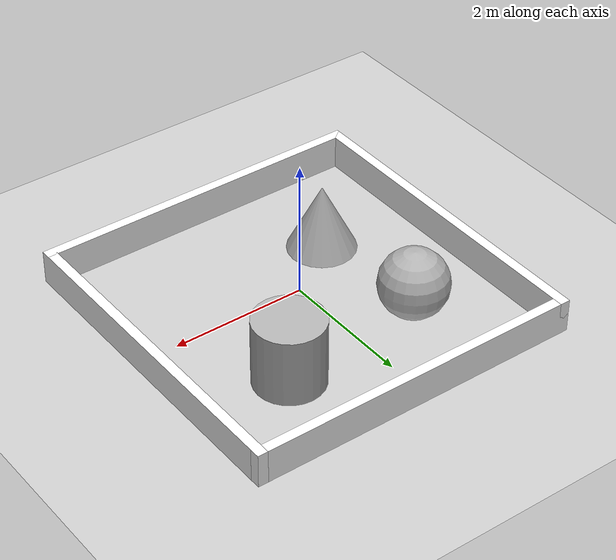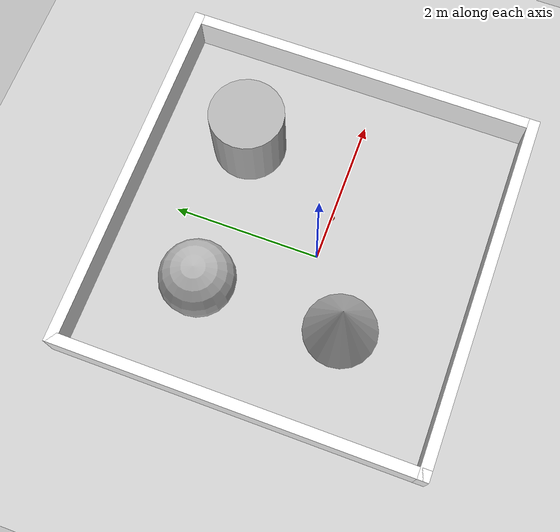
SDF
<sdf version='1.10'>
  <world name='empty'>
    <physics name='1ms' type='ignored'>
      <max_step_size>0.001</max_step_size>
      <real_time_factor>1</real_time_factor>
      <real_time_update_rate>1000</real_time_update_rate>
    </physics>
    <plugin name='gz::sim::systems::Physics' filename='gz-sim-physics-system'/>
    <plugin name='gz::sim::systems::UserCommands' filename='gz-sim-user-commands-system'/>
    <plugin name='gz::sim::systems::SceneBroadcaster' filename='gz-sim-scene-broadcaster-system'/>
    <plugin name='gz::sim::systems::Sensors' filename='gz-sim-sensors-system'/>
    <plugin name='gz::sim::systems::Contact' filename='gz-sim-contact-system'/>
    <gravity>0 0 -9.8000000000000007</gravity>
    <magnetic_field>5.5644999999999998e-06 2.2875799999999999e-05 -4.2388400000000002e-05</magnetic_field>
    <atmosphere type='adiabatic'/>
    <scene>
      <ambient>0.400000006 0.400000006 0.400000006 1</ambient>
      <background>0.699999988 0.699999988 0.699999988 1</background>
      <shadows>true</shadows>
    </scene>
    <model name='ground_plane'>
      <static>true</static>
      <link name='link'>
        <collision name='collision'>
          <geometry>
            <plane>
              <normal>0 0 1</normal>
              <size>100 100</size>
            </plane>
          </geometry>
          <surface>
            <friction>
              <ode/>
            </friction>
            <bounce/>
            <contact/>
          </surface>
        </collision>
        <visual name='visual'>
          <geometry>
            <plane>
              <normal>0 0 1</normal>
              <size>100 100</size>
            </plane>
          </geometry>
          <material>
            <ambient>0.800000012 0.800000012 0.800000012 1</ambient>
            <diffuse>0.800000012 0.800000012 0.800000012 1</diffuse>
            <specular>0.800000012 0.800000012 0.800000012 1</specular>
          </material>
        </visual>
        <pose>0 0 0 0 0 0</pose>
        <inertial>
          <pose>0 0 0 0 0 0</pose>
          <mass>1</mass>
          <inertia>
            <ixx>1</ixx>
            <ixy>0</ixy>
            <ixz>0</ixz>
            <iyy>1</iyy>
            <iyz>0</iyz>
            <izz>1</izz>
          </inertia>
        </inertial>
        <enable_wind>false</enable_wind>
      </link>
      <pose>0 0 0 0 0 0</pose>
      <self_collide>false</self_collide>
    </model>
    <model name='turtlebot3_square'>
      <pose>0.17262709127520459 0.27621772992416554 0 0 0 1.4432899320127035e-15</pose>
      <static>true</static>
      <link name='Wall_1'>
        <pose>2.4249999999999998 0 0.25 0 0 1.5708</pose>
        <collision name='Wall_1_Collision'>
          <geometry>
            <box>
              <size>5 0.14999999999999999 0.5</size>
            </box>
          </geometry>
          <surface>
            <friction>
              <ode/>
            </friction>
            <bounce/>
            <contact/>
          </surface>
        </collision>
        <visual name='Wall_1_Visual'>
          <pose>0 0 0 0 0 0</pose>
          <geometry>
            <box>
              <size>5 0.14999999999999999 0.5</size>
            </box>
          </geometry>
          <material>
            <pbr>
              <metal>
                <albedo_map>textures/wood.png</albedo_map>
              </metal>
            </pbr>
            <ambient>1 1 1 1</ambient>
            <diffuse>1 1 1 1</diffuse>
            <specular>0.200000003 0.200000003 0.200000003 1</specular>
            <emissive>0 0 0 1</emissive>
          </material>
        </visual>
        <inertial>
          <pose>0 0 0 0 0 0</pose>
          <mass>1</mass>
          <inertia>
            <ixx>1</ixx>
            <ixy>0</ixy>
            <ixz>0</ixz>
            <iyy>1</iyy>
            <iyz>0</iyz>
            <izz>1</izz>
          </inertia>
        </inertial>
        <enable_wind>false</enable_wind>
      </link>
      <link name='Wall_2'>
        <pose>1.1657341758564144e-15 2.425000000000002 0.25 0 0 -6.6613381477509392e-16</pose>
        <collision name='Wall_2_Collision'>
          <geometry>
            <box>
              <size>5 0.14999999999999999 0.5</size>
            </box>
          </geometry>
          <surface>
            <friction>
              <ode/>
            </friction>
            <bounce/>
            <contact/>
          </surface>
        </collision>
        <visual name='Wall_2_Visual'>
          <pose>0 0 0 0 0 0</pose>
          <geometry>
            <box>
              <size>5 0.14999999999999999 0.5</size>
            </box>
          </geometry>
          <material>
            <pbr>
              <metal>
                <albedo_map>textures/wood.png</albedo_map>
              </metal>
            </pbr>
            <ambient>1 1 1 1</ambient>
            <diffuse>1 1 1 1</diffuse>
            <specular>0.200000003 0.200000003 0.200000003 1</specular>
            <emissive>0 0 0 1</emissive>
          </material>
        </visual>
        <inertial>
          <pose>0 0 0 0 0 0</pose>
          <mass>1</mass>
          <inertia>
            <ixx>1</ixx>
            <ixy>0</ixy>
            <ixz>0</ixz>
            <iyy>1</iyy>
            <iyz>0</iyz>
            <izz>1</izz>
          </inertia>
        </inertial>
        <enable_wind>false</enable_wind>
      </link>
      <link name='Wall_3'>
        <pose>-2.4250000000000012 3.3861802251067274e-15 0.25 0 0 1.5707999999999998</pose>
        <collision name='Wall_3_Collision'>
          <geometry>
            <box>
              <size>5 0.14999999999999999 0.5</size>
            </box>
          </geometry>
          <surface>
            <friction>
              <ode/>
            </friction>
            <bounce/>
            <contact/>
          </surface>
        </collision>
        <visual name='Wall_3_Visual'>
          <pose>0 0 0 0 0 0</pose>
          <geometry>
            <box>
              <size>5 0.14999999999999999 0.5</size>
            </box>
          </geometry>
          <material>
            <pbr>
              <metal>
                <albedo_map>textures/wood.png</albedo_map>
              </metal>
            </pbr>
            <ambient>1 1 1 1</ambient>
            <diffuse>1 1 1 1</diffuse>
            <specular>0.200000003 0.200000003 0.200000003 1</specular>
            <emissive>0 0 0 1</emissive>
          </material>
        </visual>
        <inertial>
          <pose>0 0 0 0 0 0</pose>
          <mass>1</mass>
          <inertia>
            <ixx>1</ixx>
            <ixy>0</ixy>
            <ixz>0</ixz>
            <iyy>1</iyy>
            <iyz>0</iyz>
            <izz>1</izz>
          </inertia>
        </inertial>
        <enable_wind>false</enable_wind>
      </link>
      <link name='Wall_4'>
        <pose>-2.0539125955565396e-15 -2.4249999999999985 0.25 0 0 -6.6613381477509392e-16</pose>
        <collision name='Wall_4_Collision'>
          <geometry>
            <box>
              <size>5 0.14999999999999999 0.5</size>
            </box>
          </geometry>
          <surface>
            <friction>
              <ode/>
            </friction>
            <bounce/>
            <contact/>
          </surface>
        </collision>
        <visual name='Wall_4_Visual'>
          <pose>0 0 0 0 0 0</pose>
          <geometry>
            <box>
              <size>5 0.14999999999999999 0.5</size>
            </box>
          </geometry>
          <material>
            <pbr>
              <metal>
                <albedo_map>textures/wood.png</albedo_map>
              </metal>
            </pbr>
            <ambient>1 1 1 1</ambient>
            <diffuse>1 1 1 1</diffuse>
            <specular>0.200000003 0.200000003 0.200000003 1</specular>
            <emissive>0 0 0 1</emissive>
          </material>
        </visual>
        <inertial>
          <pose>0 0 0 0 0 0</pose>
          <mass>1</mass>
          <inertia>
            <ixx>1</ixx>
            <ixy>0</ixy>
            <ixz>0</ixz>
            <iyy>1</iyy>
            <iyz>0</iyz>
            <izz>1</izz>
          </inertia>
        </inertial>
        <enable_wind>false</enable_wind>
      </link>
      <self_collide>false</self_collide>
    </model>
    <model name='cylinder'>
      <pose>1.2128265709952037 1.4146032988038038 0.49999943207967634 -2.6204243037338534e-19 1.1977778594263122e-19 2.674504100346589e-20</pose>
      <link name='cylinder_link'>
        <inertial>
          <inertia>
            <ixx>0.14580000000000001</ixx>
            <ixy>0</ixy>
            <ixz>0</ixz>
            <iyy>0.14580000000000001</iyy>
            <iyz>0</iyz>
            <izz>0.125</izz>
          </inertia>
          <mass>1</mass>
          <pose>0 0 0 0 0 0</pose>
        </inertial>
        <collision name='cylinder_collision'>
          <geometry>
            <cylinder>
              <radius>0.5</radius>
              <length>1</length>
            </cylinder>
          </geometry>
          <surface>
            <friction>
              <ode/>
            </friction>
            <bounce/>
            <contact/>
          </surface>
        </collision>
        <visual name='cylinder_visual'>
          <geometry>
            <cylinder>
              <radius>0.5</radius>
              <length>1</length>
            </cylinder>
          </geometry>
          <material>
            <ambient>0.300000012 0.300000012 0.300000012 1</ambient>
            <diffuse>0.699999988 0.699999988 0.699999988 1</diffuse>
            <specular>1 1 1 1</specular>
          </material>
        </visual>
        <pose>0 0 0 0 0 0</pose>
        <enable_wind>false</enable_wind>
      </link>
      <static>false</static>
      <self_collide>false</self_collide>
    </model>
    <model name='cone'>
      <pose>-0.83372796817740147 -0.62007198831872901 0.49999999992120586 2.254860976149843e-12 -8.4123610001957986e-10 1.6327691595209755e-17</pose>
      <link name='cone_link'>
        <inertial>
          <inertia>
            <ixx>0.074999999999999997</ixx>
            <ixy>0</ixy>
            <ixz>0</ixz>
            <iyy>0.074999999999999997</iyy>
            <iyz>0</iyz>
            <izz>0.074999999999999997</izz>
          </inertia>
          <mass>1</mass>
          <pose>0 0 0 0 0 0</pose>
        </inertial>
        <collision name='cone_collision'>
          <geometry>
            <cone>
              <radius>0.5</radius>
              <length>1</length>
            </cone>
          </geometry>
          <surface>
            <friction>
              <ode/>
            </friction>
            <bounce/>
            <contact/>
          </surface>
        </collision>
        <visual name='cone_visual'>
          <geometry>
            <cone>
              <radius>0.5</radius>
              <length>1</length>
            </cone>
          </geometry>
          <material>
            <ambient>0.300000012 0.300000012 0.300000012 1</ambient>
            <diffuse>0.699999988 0.699999988 0.699999988 1</diffuse>
            <specular>1 1 1 1</specular>
          </material>
        </visual>
        <pose>0 0 0 0 0 0</pose>
        <enable_wind>false</enable_wind>
      </link>
      <static>false</static>
      <self_collide>false</self_collide>
    </model>
    <model name='sphere'>
      <pose>-0.9244747481263873 1.2810391232264302 0.49999999980498194 0 0 0</pose>
      <link name='sphere_link'>
        <inertial>
          <inertia>
            <ixx>0.10000000000000001</ixx>
            <ixy>0</ixy>
            <ixz>0</ixz>
            <iyy>0.10000000000000001</iyy>
            <iyz>0</iyz>
            <izz>0.10000000000000001</izz>
          </inertia>
          <mass>1</mass>
          <pose>0 0 0 0 0 0</pose>
        </inertial>
        <collision name='sphere_collision'>
          <geometry>
            <sphere>
              <radius>0.5</radius>
            </sphere>
          </geometry>
          <surface>
            <friction>
              <ode/>
            </friction>
            <bounce/>
            <contact/>
          </surface>
        </collision>
        <visual name='sphere_visual'>
          <geometry>
            <sphere>
              <radius>0.5</radius>
            </sphere>
          </geometry>
          <material>
            <ambient>0.300000012 0.300000012 0.300000012 1</ambient>
            <diffuse>0.699999988 0.699999988 0.699999988 1</diffuse>
            <specular>1 1 1 1</specular>
          </material>
        </visual>
        <pose>0 0 0 0 0 0</pose>
        <enable_wind>false</enable_wind>
      </link>
      <static>false</static>
      <self_collide>false</self_collide>
    </model>
    <model name='RoboCup SPL Ball'>
      <static>false</static>
      <link name='ball'>
        <inertial>
          <mass>0.0055999999999999999</mass>
          <inertia>
            <ixx>2.3700000000000002e-06</ixx>
            <iyy>2.3700000000000002e-06</iyy>
            <izz>2.3700000000000002e-06</izz>
            <ixy>0</ixy>
            <ixz>0</ixz>
            <iyz>0</iyz>
          </inertia>
          <pose>0 0 0 0 0 0</pose>
        </inertial>
        <collision name='collision'>
          <geometry>
            <sphere>
              <radius>0.032500000000000001</radius>
            </sphere>
          </geometry>
          <surface>
            <friction>
              <ode/>
            </friction>
            <bounce/>
            <contact/>
          </surface>
        </collision>
        <visual name='visual'>
          <geometry>
            <sphere>
              <radius>0.032500000000000001</radius>
            </sphere>
          </geometry>
          <material>
            <ambient>0.870000005 0.25999999 0.0700000003 1</ambient>
            <diffuse>0.870000005 0.25999999 0.0700000003 1</diffuse>
            <specular>0.870000005 0.25999999 0.0700000003 1</specular>
          </material>
        </visual>
        <pose>0 0 0 0 0 0</pose>
        <enable_wind>false</enable_wind>
      </link>
      <pose>0.58550697565078735 -0.010044500231742859 0.032499114179365414 0 0 0</pose>
      <self_collide>false</self_collide>
    </model>
    <light name='sun' type='directional'>
      <pose>0 0 10 0 0 0</pose>
      <cast_shadows>true</cast_shadows>
      <intensity>1</intensity>
      <direction>-0.5 0.10000000000000001 -0.90000000000000002</direction>
      <diffuse>0.800000012 0.800000012 0.800000012 1</diffuse>
      <specular>0.200000003 0.200000003 0.200000003 1</specular>
      <attenuation>
        <range>1000</range>
        <linear>0.01</linear>
        <constant>0.90000000000000002</constant>
        <quadratic>0.001</quadratic>
      </attenuation>
      <spot>
        <inner_angle>0</inner_angle>
        <outer_angle>0</outer_angle>
        <falloff>0</falloff>
      </spot>
    </light>
    <light name='directionallight' type='directional'>
      <pose>3.4849297880185368 -1.780067568340137 2 0 0 0</pose>
      <cast_shadows>true</cast_shadows>
      <intensity>1</intensity>
      <direction>0 0 -1</direction>
      <diffuse>0.800000012 0.800000012 0.800000012 1</diffuse>
      <specular>0.200000003 0.200000003 0.200000003 1</specular>
      <attenuation>
        <range>1000</range>
        <linear>0.01</linear>
        <constant>0.90000000000000002</constant>
        <quadratic>0.001</quadratic>
      </attenuation>
      <spot>
        <inner_angle>0</inner_angle>
        <outer_angle>0</outer_angle>
        <falloff>0</falloff>
      </spot>
    </light>
    <light name='pointlight' type='point'>
      <pose>0.61859744974527997 -0.055039974788753665 2 0 0 0</pose>
      <cast_shadows>false</cast_shadows>
      <intensity>1</intensity>
      <direction>0 0 -1</direction>
      <diffuse>0.5 0.5 0.5 1</diffuse>
      <specular>0.5 0.5 0.5 1</specular>
      <attenuation>
        <range>4</range>
        <linear>0.5</linear>
        <constant>0.20000000000000001</constant>
        <quadratic>0.01</quadratic>
      </attenuation>
      <spot>
        <inner_angle>0</inner_angle>
        <outer_angle>0</outer_angle>
        <falloff>0</falloff>
      </spot>
    </light>
  </world>
</sdf>
